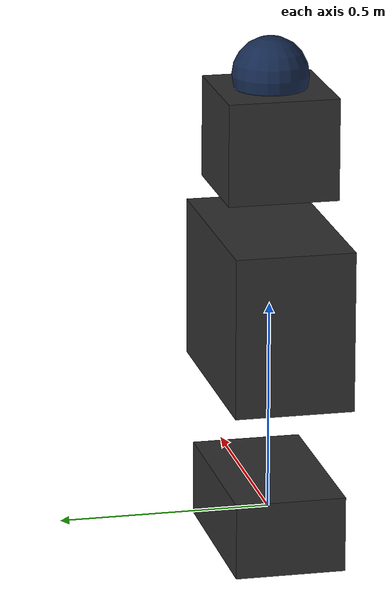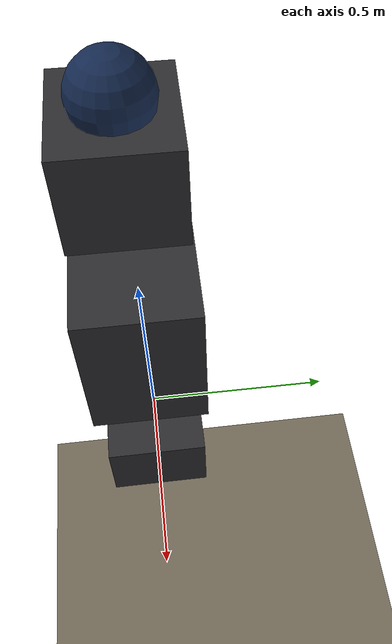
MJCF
<mujoco model="ares1">
  <!-- ARES-1 MJCF placeholder per arc.md 14 — MuJoCo 3.x -->
  <!-- Generated from URDF: use `python -m mujoco --urdf2mjcf` or `pip install urdf2mjcf` later -->
  <compiler angle="degree" meshdir="../src/ares1_description/meshes/visual" autolimits="true"/>
  <option timestep="0.002" gravity="0 0 -9.81" integrator="implicitfast"/>
  <worldbody>
    <light name="sun" pos="0 0 10" dir="-0.5 0.1 -0.9" directional="true" castshadow="true"/>
    <geom name="ground" type="plane" pos="0 0 -1.3" size="100 100 0.1" material="ground_mat" condim="3"/>
    <!-- Include full URDF via mujoco's urdf loader fallback: user should run
         `mujoco src/ares1_description/urdf/ares1.urdf.xacro` via mjpython -->
    <body name="ares1_root" pos="0 0 0">
      <joint name="free" type="free" damping="10" armature="0.5"/>
      <geom name="pelvis_placeholder" type="box" size="0.23 0.13 0.09" pos="0 0 0" rgba="0.18 0.18 0.19 1"/>
      <body name="chest_dummy" pos="0 0 0.5"><geom type="box" size="0.26 0.14 0.19" rgba="0.18 0.18 0.19 1"/></body>
      <body name="head_dummy" pos="0 0 0.9"><geom type="box" size="0.14 0.13 0.12" rgba="0.18 0.18 0.19 1"/><geom name="dome" type="sphere" size="0.09" pos="0 0 0.15" rgba="0.08 0.16 0.31 1"/></body>
    </body>
  </worldbody>
  <asset>
    <material name="ground_mat" rgba="0.45 0.42 0.35 1"/>
    <material name="dark_grey" rgba="0.18 0.18 0.19 1"/>
  </asset>
  <actuator>
    <!-- Hydraulics placeholders for 26-DOF — to be replaced by generated MJCF from URDF -->
    <motor name="neck_yaw" joint="free" gear="120"/>
  </actuator>
  <sensor>
    <framepos name="imu" objtype="body" objname="ares1_root"/>
  </sensor>
</mujoco>
